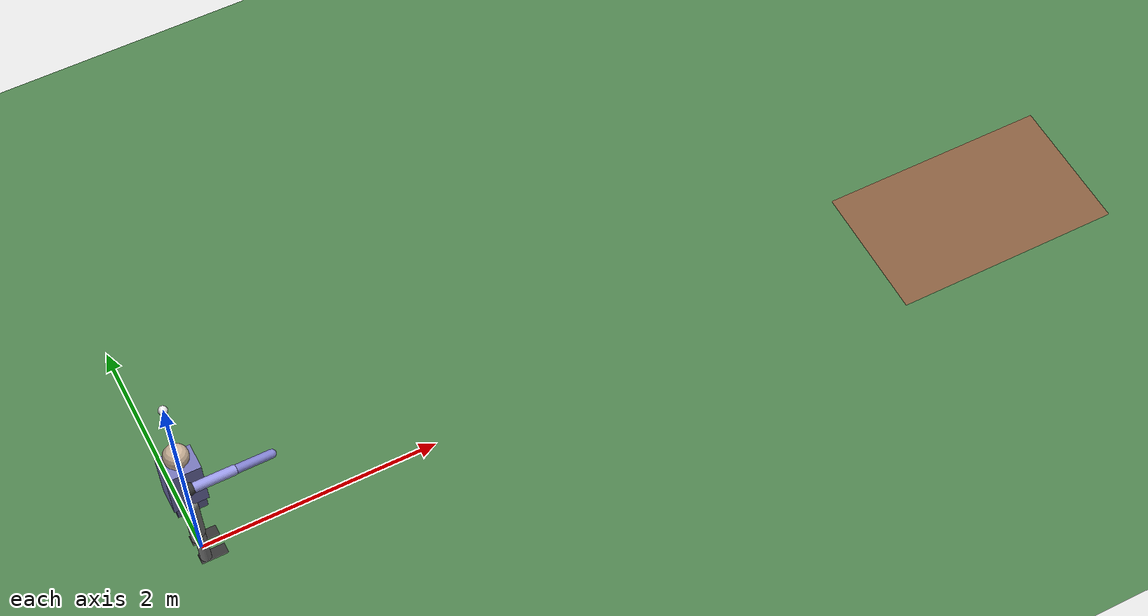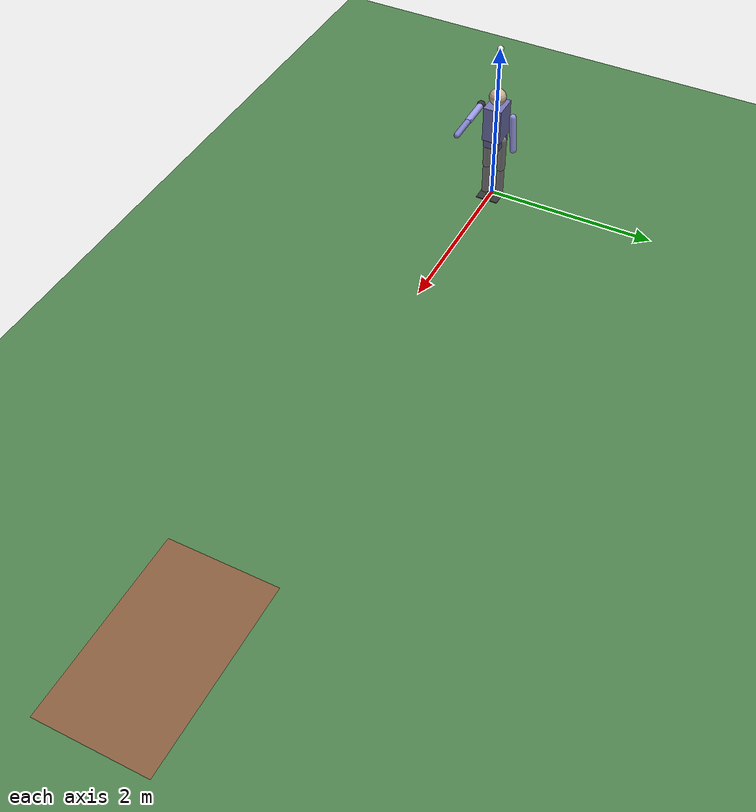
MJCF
<mujoco model="bowler">
  <compiler angle="degree"/>
  <option gravity="0 0 -9.81" timestep="0.002"/>

  <default>
    <joint damping="0.5" armature="0.01"/>
    <geom contype="1" conaffinity="1" friction="0.9 0.005 0.0001"/>
  </default>

  <worldbody>
    <light diffuse="0.6 0.6 0.6" pos="0 0 4" dir="0 0 -1"/>
    <light diffuse="0.3 0.3 0.3" pos="3 -3 3" dir="-1 1 -1"/>

    <geom name="ground" type="plane" size="20 5 0.1" rgba="0.3 0.5 0.3 1"/>
    <geom name="target_zone" type="box" pos="7.0 0 0.002" size="1.0 0.6 0.002"
          rgba="0.9 0.2 0.2 0.4" contype="0" conaffinity="0"/>

    <!-- root/leg default pos and joint "ref" values are cosmetic only --
         BowlerEnv drives qpos directly every frame (see envs/runup.py),
         never relies on these compiled defaults. -->
    <body name="root" pos="0 0 0.80">
      <freejoint name="root_free"/>
      <geom name="pelvis" type="box" size="0.12 0.1 0.08" rgba="0.4 0.4 0.6 1"/>

      <body name="torso" pos="0 0 0.25">
        <geom name="torso_geom" type="box" size="0.14 0.11 0.22" rgba="0.45 0.45 0.7 1"/>

        <body name="head" pos="0 0 0.32">
          <geom type="sphere" size="0.1" rgba="0.8 0.7 0.6 1" contype="0" conaffinity="0"/>
        </body>

        <!-- bowling arm, reused as-is from throw_arm.xml -->
        <body name="shoulder_mount" pos="0 -0.2 0.15">
          <geom type="sphere" size="0.05" rgba="0.2 0.2 0.2 1" contype="0" conaffinity="0"/>
          <body name="upper_arm" pos="0 0 0">
            <joint name="shoulder" type="hinge" axis="0 1 0" range="60 450"/>
            <geom type="capsule" fromto="0 0 0 0.35 0 0" size="0.04" rgba="0.6 0.6 0.9 1"/>
            <body name="forearm" pos="0.35 0 0">
              <joint name="elbow" type="hinge" axis="0 1 0" range="0 160"/>
              <geom type="capsule" fromto="0 0 0 0.3 0 0" size="0.035" rgba="0.5 0.5 0.8 1"/>
              <site name="hand" pos="0.3 0 0" size="0.02"/>
            </body>
          </body>
        </body>

        <!-- non-bowling arm: fixed, cosmetic only -->
        <body name="other_arm" pos="0 0.2 0.1">
          <geom type="capsule" fromto="0 0 0 0.05 0.05 -0.4" size="0.04" rgba="0.6 0.6 0.9 1"
                contype="0" conaffinity="0"/>
        </body>
      </body>

      <!-- left leg -->
      <body name="left_thigh" pos="0 0.09 0">
        <joint name="left_hip" type="hinge" axis="0 1 0" range="-60 90" ref="25"/>
        <geom type="capsule" fromto="0 0 0 0 0 -0.4" size="0.05" rgba="0.5 0.5 0.5 1"/>
        <body name="left_shin" pos="0 0 -0.4">
          <joint name="left_knee" type="hinge" axis="0 1 0" range="-140 0" ref="-10"/>
          <geom type="capsule" fromto="0 0 0 0 0 -0.4" size="0.045" rgba="0.5 0.5 0.5 1"/>
          <body name="left_foot" pos="0 0 -0.4">
            <joint name="left_ankle" type="hinge" axis="0 1 0" range="-40 40" ref="0"/>
            <geom name="left_foot_geom" type="box" size="0.11 0.045 0.02" pos="0.06 0 -0.02"
                  rgba="0.2 0.2 0.2 1"/>
          </body>
        </body>
      </body>

      <!-- right leg -->
      <body name="right_thigh" pos="0 -0.09 0">
        <joint name="right_hip" type="hinge" axis="0 1 0" range="-60 90" ref="-25"/>
        <geom type="capsule" fromto="0 0 0 0 0 -0.4" size="0.05" rgba="0.5 0.5 0.5 1"/>
        <body name="right_shin" pos="0 0 -0.4">
          <joint name="right_knee" type="hinge" axis="0 1 0" range="-140 0" ref="-25"/>
          <geom type="capsule" fromto="0 0 0 0 0 -0.4" size="0.045" rgba="0.5 0.5 0.5 1"/>
          <body name="right_foot" pos="0 0 -0.4">
            <joint name="right_ankle" type="hinge" axis="0 1 0" range="-40 40" ref="10"/>
            <geom name="right_foot_geom" type="box" size="0.11 0.045 0.02" pos="0.06 0 -0.02"
                  rgba="0.2 0.2 0.2 1"/>
          </body>
        </body>
      </body>
    </body>

    <body name="ball" pos="0 0 2">
      <freejoint name="ball_free"/>
      <geom name="ball_geom" type="sphere" size="0.036" mass="0.16" rgba="0.9 0.9 0.9 1"/>
    </body>
  </worldbody>

  <contact>
    <exclude body1="ball" body2="forearm"/>
  </contact>
  <equality>
    <weld name="grip" body1="ball" body2="forearm" solref="0.002 1" solimp="0.95 0.99 0.001 0.5 2"/>

  </equality>

  <actuator>
    <motor name="shoulder_motor" joint="shoulder" gear="40" ctrlrange="-1 1"/>
    <motor name="elbow_motor" joint="elbow" gear="30" ctrlrange="-1 1"/>
  </actuator>
</mujoco>
